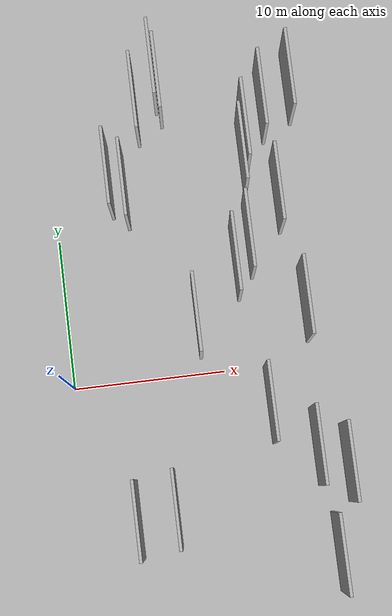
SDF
<?xml version="1.0" encoding="utf-8"?>

<sdf version="1.6">

   <world name="default">

      <gui fullscreen="0">

         <camera name="user_camera">

            <pose>-15 0 4.57585 0 0 0</pose>

            <view_controller>orbit</view_controller>

         </camera>

      </gui>

      <scene>

         <sky>

           <clouds>

             <speed>12</speed>

           </clouds>

         </sky>

         <ambient>0.4 0.4 0.4 1</ambient>

         <background>0.7 0.7 0.7 1</background>

         <shadows>1</shadows>

      </scene>

      <gravity>0 0 -9.8066</gravity>

      <magnetic_field>6e-06 2.3e-05 -4.2e-05</magnetic_field>

      <physics default="0" name="default_physics" type="ode">

         <ode>

            <solver>

               <type>quick</type>

               <iters>10</iters>

               <sor>1.0</sor>

               <use_dynamic_moi_rescaling>0</use_dynamic_moi_rescaling>

            </solver>

            <constraints>

               <cfm>0</cfm>

               <erp>0.2</erp>

               <contact_max_correcting_vel>100</contact_max_correcting_vel>

               <contact_surface_layer>0.001</contact_surface_layer>

            </constraints>

         </ode>

         <max_step_size>0.004</max_step_size>

         <real_time_factor>1</real_time_factor>

         <real_time_update_rate>250</real_time_update_rate>

      </physics>

      <light name="sun" type="directional">

         <cast_shadows>1</cast_shadows>

         <pose>0 0 10 0 0 0</pose>

         <diffuse>0.8 0.8 0.8 1</diffuse>

         <specular>0.2 0.2 0.2 1</specular>

         <attenuation>

            <range>1000</range>

            <constant>0.9</constant>

            <linear>0.01</linear>

            <quadratic>0.001</quadratic>

         </attenuation>

         <direction>-0.5 0.1 -0.9</direction>

      </light>

      <include>

         <name>ground_plane_1</name>

         <uri>model://HANNAS_ground_plane</uri>

         <pose>0 0 0  0 0 0</pose>

      </include>

      <include>

         <name>ground_plane_2</name>

         <uri>model://HANNAS_ground_plane</uri>

         <pose>100 0 0  0 0 0</pose>

      </include>

      <model name="HANNAS_wall_1">

         <static>1</static>

         <pose frame="">15.6432 -12.4000 2.5 0.000000 0.000000 1.570796</pose>

         <link name="link">

            <pose frame="">0 0 2.50 0 0 0</pose>

            <collision name="collision">

               <geometry>

                  <box>

                     <size>5.00 0.2 5.00</size>

                  </box>

               </geometry>

               <max_contacts>10</max_contacts>

               <surface>

                  <contact>

                     <ode/>

                  </contact>

                  <bounce/>

                  <friction>

                     <torsional>

                        <ode/>

                     </torsional>

                     <ode/>

                  </friction>

               </surface>

            </collision>

            <visual name="visual">

               <cast_shadows>0</cast_shadows>

               <geometry>

                  <box>

                     <size>5.00 0.2 5.00</size>

                  </box>

               </geometry>

               <material>

                  <script>

                     <uri>model://HANNAS_wall/materials/scripts</uri>

                     <uri>model://HANNAS_wall/materials/textures</uri>

                     <name>vrc/HANNAS_wall</name>

                  </script>

               </material>

            </visual>

            <self_collide>0</self_collide>

            <enable_wind>0</enable_wind>

            <kinematic>0</kinematic>

         </link>

      </model>

      <model name="HANNAS_wall_2">

         <static>1</static>

         <pose frame="">16.8966 -6.9400 2.5 0.000000 0.000000 1.570796</pose>

         <link name="link">

            <pose frame="">0 0 2.50 0 0 0</pose>

            <collision name="collision">

               <geometry>

                  <box>

                     <size>5.00 0.2 5.00</size>

                  </box>

               </geometry>

               <max_contacts>10</max_contacts>

               <surface>

                  <contact>

                     <ode/>

                  </contact>

                  <bounce/>

                  <friction>

                     <torsional>

                        <ode/>

                     </torsional>

                     <ode/>

                  </friction>

               </surface>

            </collision>

            <visual name="visual">

               <cast_shadows>0</cast_shadows>

               <geometry>

                  <box>

                     <size>5.00 0.2 5.00</size>

                  </box>

               </geometry>

               <material>

                  <script>

                     <uri>model://HANNAS_wall/materials/scripts</uri>

                     <uri>model://HANNAS_wall/materials/textures</uri>

                     <name>vrc/HANNAS_wall</name>

                  </script>

               </material>

            </visual>

            <self_collide>0</self_collide>

            <enable_wind>0</enable_wind>

            <kinematic>0</kinematic>

         </link>

      </model>

      <model name="HANNAS_wall_3">

         <static>1</static>

         <pose frame="">6.1856 17.7484 2.5 0.000000 0.000000 1.570796</pose>

         <link name="link">

            <pose frame="">0 0 2.50 0 0 0</pose>

            <collision name="collision">

               <geometry>

                  <box>

                     <size>5.00 0.2 5.00</size>

                  </box>

               </geometry>

               <max_contacts>10</max_contacts>

               <surface>

                  <contact>

                     <ode/>

                  </contact>

                  <bounce/>

                  <friction>

                     <torsional>

                        <ode/>

                     </torsional>

                     <ode/>

                  </friction>

               </surface>

            </collision>

            <visual name="visual">

               <cast_shadows>0</cast_shadows>

               <geometry>

                  <box>

                     <size>5.00 0.2 5.00</size>

                  </box>

               </geometry>

               <material>

                  <script>

                     <uri>model://HANNAS_wall/materials/scripts</uri>

                     <uri>model://HANNAS_wall/materials/textures</uri>

                     <name>vrc/HANNAS_wall</name>

                  </script>

               </material>

            </visual>

            <self_collide>0</self_collide>

            <enable_wind>0</enable_wind>

            <kinematic>0</kinematic>

         </link>

      </model>

      <model name="HANNAS_wall_4">

         <static>1</static>

         <pose frame="">14.3519 16.9778 2.5 0.000000 0.000000 1.570796</pose>

         <link name="link">

            <pose frame="">0 0 2.50 0 0 0</pose>

            <collision name="collision">

               <geometry>

                  <box>

                     <size>5.00 0.2 5.00</size>

                  </box>

               </geometry>

               <max_contacts>10</max_contacts>

               <surface>

                  <contact>

                     <ode/>

                  </contact>

                  <bounce/>

                  <friction>

                     <torsional>

                        <ode/>

                     </torsional>

                     <ode/>

                  </friction>

               </surface>

            </collision>

            <visual name="visual">

               <cast_shadows>0</cast_shadows>

               <geometry>

                  <box>

                     <size>5.00 0.2 5.00</size>

                  </box>

               </geometry>

               <material>

                  <script>

                     <uri>model://HANNAS_wall/materials/scripts</uri>

                     <uri>model://HANNAS_wall/materials/textures</uri>

                     <name>vrc/HANNAS_wall</name>

                  </script>

               </material>

            </visual>

            <self_collide>0</self_collide>

            <enable_wind>0</enable_wind>

            <kinematic>0</kinematic>

         </link>

      </model>

      <model name="HANNAS_wall_5">

         <static>1</static>

         <pose frame="">13.0590 15.1703 2.5 0.000000 0.000000 1.570796</pose>

         <link name="link">

            <pose frame="">0 0 2.50 0 0 0</pose>

            <collision name="collision">

               <geometry>

                  <box>

                     <size>5.00 0.2 5.00</size>

                  </box>

               </geometry>

               <max_contacts>10</max_contacts>

               <surface>

                  <contact>

                     <ode/>

                  </contact>

                  <bounce/>

                  <friction>

                     <torsional>

                        <ode/>

                     </torsional>

                     <ode/>

                  </friction>

               </surface>

            </collision>

            <visual name="visual">

               <cast_shadows>0</cast_shadows>

               <geometry>

                  <box>

                     <size>5.00 0.2 5.00</size>

                  </box>

               </geometry>

               <material>

                  <script>

                     <uri>model://HANNAS_wall/materials/scripts</uri>

                     <uri>model://HANNAS_wall/materials/textures</uri>

                     <name>vrc/HANNAS_wall</name>

                  </script>

               </material>

            </visual>

            <self_collide>0</self_collide>

            <enable_wind>0</enable_wind>

            <kinematic>0</kinematic>

         </link>

      </model>

      <model name="HANNAS_wall_6">

         <static>1</static>

         <pose frame="">15.1109 -5.7030 2.5 0.000000 0.000000 1.570796</pose>

         <link name="link">

            <pose frame="">0 0 2.50 0 0 0</pose>

            <collision name="collision">

               <geometry>

                  <box>

                     <size>5.00 0.2 5.00</size>

                  </box>

               </geometry>

               <max_contacts>10</max_contacts>

               <surface>

                  <contact>

                     <ode/>

                  </contact>

                  <bounce/>

                  <friction>

                     <torsional>

                        <ode/>

                     </torsional>

                     <ode/>

                  </friction>

               </surface>

            </collision>

            <visual name="visual">

               <cast_shadows>0</cast_shadows>

               <geometry>

                  <box>

                     <size>5.00 0.2 5.00</size>

                  </box>

               </geometry>

               <material>

                  <script>

                     <uri>model://HANNAS_wall/materials/scripts</uri>

                     <uri>model://HANNAS_wall/materials/textures</uri>

                     <name>vrc/HANNAS_wall</name>

                  </script>

               </material>

            </visual>

            <self_collide>0</self_collide>

            <enable_wind>0</enable_wind>

            <kinematic>0</kinematic>

         </link>

      </model>

      <model name="HANNAS_wall_7">

         <static>1</static>

         <pose frame="">4.9079 12.2312 2.5 0.000000 0.000000 1.570796</pose>

         <link name="link">

            <pose frame="">0 0 2.50 0 0 0</pose>

            <collision name="collision">

               <geometry>

                  <box>

                     <size>5.00 0.2 5.00</size>

                  </box>

               </geometry>

               <max_contacts>10</max_contacts>

               <surface>

                  <contact>

                     <ode/>

                  </contact>

                  <bounce/>

                  <friction>

                     <torsional>

                        <ode/>

                     </torsional>

                     <ode/>

                  </friction>

               </surface>

            </collision>

            <visual name="visual">

               <cast_shadows>0</cast_shadows>

               <geometry>

                  <box>

                     <size>5.00 0.2 5.00</size>

                  </box>

               </geometry>

               <material>

                  <script>

                     <uri>model://HANNAS_wall/materials/scripts</uri>

                     <uri>model://HANNAS_wall/materials/textures</uri>

                     <name>vrc/HANNAS_wall</name>

                  </script>

               </material>

            </visual>

            <self_collide>0</self_collide>

            <enable_wind>0</enable_wind>

            <kinematic>0</kinematic>

         </link>

      </model>

      <model name="HANNAS_wall_8">

         <static>1</static>

         <pose frame="">12.5357 -2.7445 2.5 0.000000 0.000000 1.570796</pose>

         <link name="link">

            <pose frame="">0 0 2.50 0 0 0</pose>

            <collision name="collision">

               <geometry>

                  <box>

                     <size>5.00 0.2 5.00</size>

                  </box>

               </geometry>

               <max_contacts>10</max_contacts>

               <surface>

                  <contact>

                     <ode/>

                  </contact>

                  <bounce/>

                  <friction>

                     <torsional>

                        <ode/>

                     </torsional>

                     <ode/>

                  </friction>

               </surface>

            </collision>

            <visual name="visual">

               <cast_shadows>0</cast_shadows>

               <geometry>

                  <box>

                     <size>5.00 0.2 5.00</size>

                  </box>

               </geometry>

               <material>

                  <script>

                     <uri>model://HANNAS_wall/materials/scripts</uri>

                     <uri>model://HANNAS_wall/materials/textures</uri>

                     <name>vrc/HANNAS_wall</name>

                  </script>

               </material>

            </visual>

            <self_collide>0</self_collide>

            <enable_wind>0</enable_wind>

            <kinematic>0</kinematic>

         </link>

      </model>

      <model name="HANNAS_wall_9">

         <static>1</static>

         <pose frame="">16.2596 18.0469 2.5 0.000000 0.000000 1.570796</pose>

         <link name="link">

            <pose frame="">0 0 2.50 0 0 0</pose>

            <collision name="collision">

               <geometry>

                  <box>

                     <size>5.00 0.2 5.00</size>

                  </box>

               </geometry>

               <max_contacts>10</max_contacts>

               <surface>

                  <contact>

                     <ode/>

                  </contact>

                  <bounce/>

                  <friction>

                     <torsional>

                        <ode/>

                     </torsional>

                     <ode/>

                  </friction>

               </surface>

            </collision>

            <visual name="visual">

               <cast_shadows>0</cast_shadows>

               <geometry>

                  <box>

                     <size>5.00 0.2 5.00</size>

                  </box>

               </geometry>

               <material>

                  <script>

                     <uri>model://HANNAS_wall/materials/scripts</uri>

                     <uri>model://HANNAS_wall/materials/textures</uri>

                     <name>vrc/HANNAS_wall</name>

                  </script>

               </material>

            </visual>

            <self_collide>0</self_collide>

            <enable_wind>0</enable_wind>

            <kinematic>0</kinematic>

         </link>

      </model>

      <model name="HANNAS_wall_10">

         <static>1</static>

         <pose frame="">3.4491 -8.9533 2.5 0.000000 0.000000 1.570796</pose>

         <link name="link">

            <pose frame="">0 0 2.50 0 0 0</pose>

            <collision name="collision">

               <geometry>

                  <box>

                     <size>5.00 0.2 5.00</size>

                  </box>

               </geometry>

               <max_contacts>10</max_contacts>

               <surface>

                  <contact>

                     <ode/>

                  </contact>

                  <bounce/>

                  <friction>

                     <torsional>

                        <ode/>

                     </torsional>

                     <ode/>

                  </friction>

               </surface>

            </collision>

            <visual name="visual">

               <cast_shadows>0</cast_shadows>

               <geometry>

                  <box>

                     <size>5.00 0.2 5.00</size>

                  </box>

               </geometry>

               <material>

                  <script>

                     <uri>model://HANNAS_wall/materials/scripts</uri>

                     <uri>model://HANNAS_wall/materials/textures</uri>

                     <name>vrc/HANNAS_wall</name>

                  </script>

               </material>

            </visual>

            <self_collide>0</self_collide>

            <enable_wind>0</enable_wind>

            <kinematic>0</kinematic>

         </link>

      </model>

      <model name="HANNAS_wall_11">

         <static>1</static>

         <pose frame="">3.9485 13.0780 2.5 0.000000 0.000000 1.570796</pose>

         <link name="link">

            <pose frame="">0 0 2.50 0 0 0</pose>

            <collision name="collision">

               <geometry>

                  <box>

                     <size>5.00 0.2 5.00</size>

                  </box>

               </geometry>

               <max_contacts>10</max_contacts>

               <surface>

                  <contact>

                     <ode/>

                  </contact>

                  <bounce/>

                  <friction>

                     <torsional>

                        <ode/>

                     </torsional>

                     <ode/>

                  </friction>

               </surface>

            </collision>

            <visual name="visual">

               <cast_shadows>0</cast_shadows>

               <geometry>

                  <box>

                     <size>5.00 0.2 5.00</size>

                  </box>

               </geometry>

               <material>

                  <script>

                     <uri>model://HANNAS_wall/materials/scripts</uri>

                     <uri>model://HANNAS_wall/materials/textures</uri>

                     <name>vrc/HANNAS_wall</name>

                  </script>

               </material>

            </visual>

            <self_collide>0</self_collide>

            <enable_wind>0</enable_wind>

            <kinematic>0</kinematic>

         </link>

      </model>

      <model name="HANNAS_wall_12">

         <static>1</static>

         <pose frame="">8.5485 3.2471 2.5 0.000000 0.000000 1.570796</pose>

         <link name="link">

            <pose frame="">0 0 2.50 0 0 0</pose>

            <collision name="collision">

               <geometry>

                  <box>

                     <size>5.00 0.2 5.00</size>

                  </box>

               </geometry>

               <max_contacts>10</max_contacts>

               <surface>

                  <contact>

                     <ode/>

                  </contact>

                  <bounce/>

                  <friction>

                     <torsional>

                        <ode/>

                     </torsional>

                     <ode/>

                  </friction>

               </surface>

            </collision>

            <visual name="visual">

               <cast_shadows>0</cast_shadows>

               <geometry>

                  <box>

                     <size>5.00 0.2 5.00</size>

                  </box>

               </geometry>

               <material>

                  <script>

                     <uri>model://HANNAS_wall/materials/scripts</uri>

                     <uri>model://HANNAS_wall/materials/textures</uri>

                     <name>vrc/HANNAS_wall</name>

                  </script>

               </material>

            </visual>

            <self_collide>0</self_collide>

            <enable_wind>0</enable_wind>

            <kinematic>0</kinematic>

         </link>

      </model>

      <model name="HANNAS_wall_13">

         <static>1</static>

         <pose frame="">7.8095 18.8484 2.5 0.000000 0.000000 1.570796</pose>

         <link name="link">

            <pose frame="">0 0 2.50 0 0 0</pose>

            <collision name="collision">

               <geometry>

                  <box>

                     <size>5.00 0.2 5.00</size>

                  </box>

               </geometry>

               <max_contacts>10</max_contacts>

               <surface>

                  <contact>

                     <ode/>

                  </contact>

                  <bounce/>

                  <friction>

                     <torsional>

                        <ode/>

                     </torsional>

                     <ode/>

                  </friction>

               </surface>

            </collision>

            <visual name="visual">

               <cast_shadows>0</cast_shadows>

               <geometry>

                  <box>

                     <size>5.00 0.2 5.00</size>

                  </box>

               </geometry>

               <material>

                  <script>

                     <uri>model://HANNAS_wall/materials/scripts</uri>

                     <uri>model://HANNAS_wall/materials/textures</uri>

                     <name>vrc/HANNAS_wall</name>

                  </script>

               </material>

            </visual>

            <self_collide>0</self_collide>

            <enable_wind>0</enable_wind>

            <kinematic>0</kinematic>

         </link>

      </model>

      <model name="HANNAS_wall_14">

         <static>1</static>

         <pose frame="">11.4477 6.7056 2.5 0.000000 0.000000 1.570796</pose>

         <link name="link">

            <pose frame="">0 0 2.50 0 0 0</pose>

            <collision name="collision">

               <geometry>

                  <box>

                     <size>5.00 0.2 5.00</size>

                  </box>

               </geometry>

               <max_contacts>10</max_contacts>

               <surface>

                  <contact>

                     <ode/>

                  </contact>

                  <bounce/>

                  <friction>

                     <torsional>

                        <ode/>

                     </torsional>

                     <ode/>

                  </friction>

               </surface>

            </collision>

            <visual name="visual">

               <cast_shadows>0</cast_shadows>

               <geometry>

                  <box>

                     <size>5.00 0.2 5.00</size>

                  </box>

               </geometry>

               <material>

                  <script>

                     <uri>model://HANNAS_wall/materials/scripts</uri>

                     <uri>model://HANNAS_wall/materials/textures</uri>

                     <name>vrc/HANNAS_wall</name>

                  </script>

               </material>

            </visual>

            <self_collide>0</self_collide>

            <enable_wind>0</enable_wind>

            <kinematic>0</kinematic>

         </link>

      </model>

      <model name="HANNAS_wall_15">

         <static>1</static>

         <pose frame="">12.7252 13.6570 2.5 0.000000 0.000000 1.570796</pose>

         <link name="link">

            <pose frame="">0 0 2.50 0 0 0</pose>

            <collision name="collision">

               <geometry>

                  <box>

                     <size>5.00 0.2 5.00</size>

                  </box>

               </geometry>

               <max_contacts>10</max_contacts>

               <surface>

                  <contact>

                     <ode/>

                  </contact>

                  <bounce/>

                  <friction>

                     <torsional>

                        <ode/>

                     </torsional>

                     <ode/>

                  </friction>

               </surface>

            </collision>

            <visual name="visual">

               <cast_shadows>0</cast_shadows>

               <geometry>

                  <box>

                     <size>5.00 0.2 5.00</size>

                  </box>

               </geometry>

               <material>

                  <script>

                     <uri>model://HANNAS_wall/materials/scripts</uri>

                     <uri>model://HANNAS_wall/materials/textures</uri>

                     <name>vrc/HANNAS_wall</name>

                  </script>

               </material>

            </visual>

            <self_collide>0</self_collide>

            <enable_wind>0</enable_wind>

            <kinematic>0</kinematic>

         </link>

      </model>

      <model name="HANNAS_wall_16">

         <static>1</static>

         <pose frame="">12.4674 8.0561 2.5 0.000000 0.000000 1.570796</pose>

         <link name="link">

            <pose frame="">0 0 2.50 0 0 0</pose>

            <collision name="collision">

               <geometry>

                  <box>

                     <size>5.00 0.2 5.00</size>

                  </box>

               </geometry>

               <max_contacts>10</max_contacts>

               <surface>

                  <contact>

                     <ode/>

                  </contact>

                  <bounce/>

                  <friction>

                     <torsional>

                        <ode/>

                     </torsional>

                     <ode/>

                  </friction>

               </surface>

            </collision>

            <visual name="visual">

               <cast_shadows>0</cast_shadows>

               <geometry>

                  <box>

                     <size>5.00 0.2 5.00</size>

                  </box>

               </geometry>

               <material>

                  <script>

                     <uri>model://HANNAS_wall/materials/scripts</uri>

                     <uri>model://HANNAS_wall/materials/textures</uri>

                     <name>vrc/HANNAS_wall</name>

                  </script>

               </material>

            </visual>

            <self_collide>0</self_collide>

            <enable_wind>0</enable_wind>

            <kinematic>0</kinematic>

         </link>

      </model>

      <model name="HANNAS_wall_17">

         <static>1</static>

         <pose frame="">15.5358 3.4966 2.5 0.000000 0.000000 1.570796</pose>

         <link name="link">

            <pose frame="">0 0 2.50 0 0 0</pose>

            <collision name="collision">

               <geometry>

                  <box>

                     <size>5.00 0.2 5.00</size>

                  </box>

               </geometry>

               <max_contacts>10</max_contacts>

               <surface>

                  <contact>

                     <ode/>

                  </contact>

                  <bounce/>

                  <friction>

                     <torsional>

                        <ode/>

                     </torsional>

                     <ode/>

                  </friction>

               </surface>

            </collision>

            <visual name="visual">

               <cast_shadows>0</cast_shadows>

               <geometry>

                  <box>

                     <size>5.00 0.2 5.00</size>

                  </box>

               </geometry>

               <material>

                  <script>

                     <uri>model://HANNAS_wall/materials/scripts</uri>

                     <uri>model://HANNAS_wall/materials/textures</uri>

                     <name>vrc/HANNAS_wall</name>

                  </script>

               </material>

            </visual>

            <self_collide>0</self_collide>

            <enable_wind>0</enable_wind>

            <kinematic>0</kinematic>

         </link>

      </model>

      <model name="HANNAS_wall_18">

         <static>1</static>

         <pose frame="">7.5527 19.7940 2.5 0.000000 0.000000 1.570796</pose>

         <link name="link">

            <pose frame="">0 0 2.50 0 0 0</pose>

            <collision name="collision">

               <geometry>

                  <box>

                     <size>5.00 0.2 5.00</size>

                  </box>

               </geometry>

               <max_contacts>10</max_contacts>

               <surface>

                  <contact>

                     <ode/>

                  </contact>

                  <bounce/>

                  <friction>

                     <torsional>

                        <ode/>

                     </torsional>

                     <ode/>

                  </friction>

               </surface>

            </collision>

            <visual name="visual">

               <cast_shadows>0</cast_shadows>

               <geometry>

                  <box>

                     <size>5.00 0.2 5.00</size>

                  </box>

               </geometry>

               <material>

                  <script>

                     <uri>model://HANNAS_wall/materials/scripts</uri>

                     <uri>model://HANNAS_wall/materials/textures</uri>

                     <name>vrc/HANNAS_wall</name>

                  </script>

               </material>

            </visual>

            <self_collide>0</self_collide>

            <enable_wind>0</enable_wind>

            <kinematic>0</kinematic>

         </link>

      </model>

      <model name="HANNAS_wall_19">

         <static>1</static>

         <pose frame="">5.9055 -8.5499 2.5 0.000000 0.000000 1.570796</pose>

         <link name="link">

            <pose frame="">0 0 2.50 0 0 0</pose>

            <collision name="collision">

               <geometry>

                  <box>

                     <size>5.00 0.2 5.00</size>

                  </box>

               </geometry>

               <max_contacts>10</max_contacts>

               <surface>

                  <contact>

                     <ode/>

                  </contact>

                  <bounce/>

                  <friction>

                     <torsional>

                        <ode/>

                     </torsional>

                     <ode/>

                  </friction>

               </surface>

            </collision>

            <visual name="visual">

               <cast_shadows>0</cast_shadows>

               <geometry>

                  <box>

                     <size>5.00 0.2 5.00</size>

                  </box>

               </geometry>

               <material>

                  <script>

                     <uri>model://HANNAS_wall/materials/scripts</uri>

                     <uri>model://HANNAS_wall/materials/textures</uri>

                     <name>vrc/HANNAS_wall</name>

                  </script>

               </material>

            </visual>

            <self_collide>0</self_collide>

            <enable_wind>0</enable_wind>

            <kinematic>0</kinematic>

         </link>

      </model>

      <model name="HANNAS_wall_20">

         <static>1</static>

         <pose frame="">14.6635 10.8099 2.5 0.000000 0.000000 1.570796</pose>

         <link name="link">

            <pose frame="">0 0 2.50 0 0 0</pose>

            <collision name="collision">

               <geometry>

                  <box>

                     <size>5.00 0.2 5.00</size>

                  </box>

               </geometry>

               <max_contacts>10</max_contacts>

               <surface>

                  <contact>

                     <ode/>

                  </contact>

                  <bounce/>

                  <friction>

                     <torsional>

                        <ode/>

                     </torsional>

                     <ode/>

                  </friction>

               </surface>

            </collision>

            <visual name="visual">

               <cast_shadows>0</cast_shadows>

               <geometry>

                  <box>

                     <size>5.00 0.2 5.00</size>

                  </box>

               </geometry>

               <material>

                  <script>

                     <uri>model://HANNAS_wall/materials/scripts</uri>

                     <uri>model://HANNAS_wall/materials/textures</uri>

                     <name>vrc/HANNAS_wall</name>

                  </script>

               </material>

            </visual>

            <self_collide>0</self_collide>

            <enable_wind>0</enable_wind>

            <kinematic>0</kinematic>

         </link>

      </model>

   </world>

</sdf>

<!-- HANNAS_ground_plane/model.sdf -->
<sdf version="1.4">
<model name="HANNAS_ground_plane">
  <static>true</static>
    <link name="link">
      <collision name="collision">
        <geometry>
          <plane>
            <normal>0 0 1</normal>
            <size>1000 1000</size>
          </plane>
        </geometry>
        <surface>
          <friction>
            <ode>
              <mu>100</mu>
              <mu2>50</mu2>
            </ode>
          </friction>
        </surface>
      </collision>
      <visual name="visual">
        <cast_shadows>false</cast_shadows>
        <geometry>
          <plane>
            <normal>0 0 1</normal>
            <size>1000 1000</size>
          </plane>
        </geometry>
        <material>
          <script>
            <uri>model://HANNAS_ground_plane/materials/scripts/HANNAS_ground_plane.material</uri>
	    <uri>model://HANNAS_ground_plane/materials/textures</uri>
            <name>HANNASGroundPlane/Image</name>
          </script>
        </material>
      </visual>
    </link>
  </model>
</sdf>
